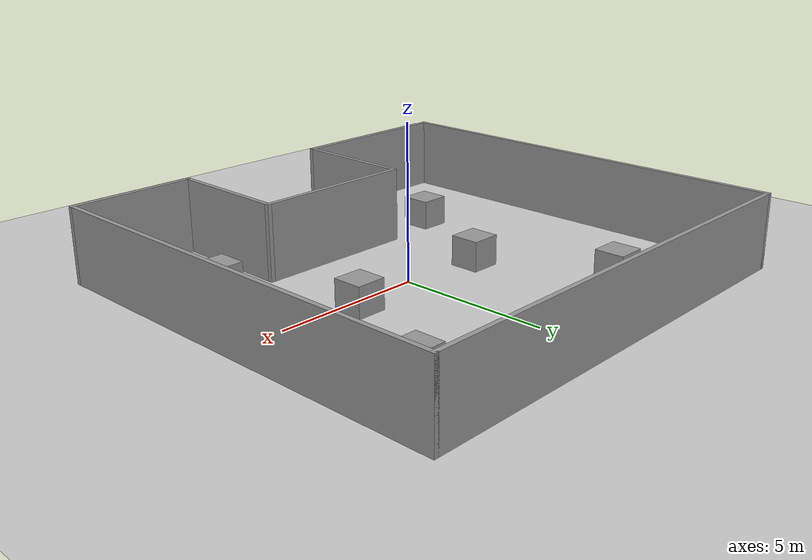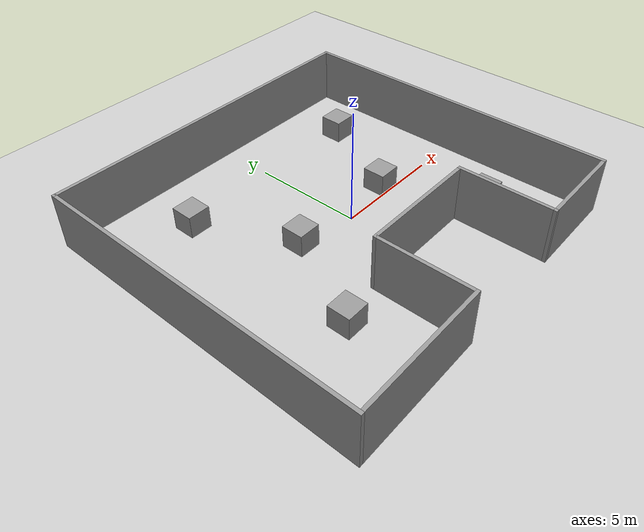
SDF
<sdf version="1.6">
 <world name="default">
  <light name="sun" type="directional">
   <pose>0 0 10 0 -0 0</pose>
   <diffuse>0.8 0.8 0.8 1</diffuse>
   <specular>0.2 0.2 0.2 1</specular>
   <attenuation>
    <range>1000</range>
    <constant>0.9</constant>
    <linear>0.01</linear>
    <quadratic>0.001</quadratic>
   </attenuation>
   <direction>-0.5 0.1 -0.9</direction>
  </light>
  <model name="ground_plane">
   <static>1</static>
   <link name="link">
    <collision name="collision">
     <geometry><plane><normal>0 0 1</normal><size>100 100</size></plane></geometry>
     <surface>
      <contact><collide_bitmask>65535</collide_bitmask></contact>
      <friction><ode><mu>100</mu><mu2>50</mu2></ode></friction>
     </surface>
    </collision>
    <visual name="visual">
     <cast_shadows>0</cast_shadows>
     <geometry><plane><normal>0 0 1</normal><size>100 100</size></plane></geometry>
     <material>
      <script><uri>file://media/materials/scripts/gazebo.material</uri><name>Gazebo/Grey</name></script>
     </material>
    </visual>
   </link>
  </model>
  <gravity>0 0 -9.8</gravity>
  <magnetic_field>6e-06 2.3e-05 -4.2e-05</magnetic_field>
  <atmosphere type="adiabatic"/>
  <physics name="default_physics" default="0" type="ode">
   <max_step_size>0.001</max_step_size>
   <real_time_factor>1</real_time_factor>
   <real_time_update_rate>1000</real_time_update_rate>
  </physics>
  <scene><ambient>0.4 0.4 0.4 1</ambient><background>0.7 0.7 0.7 1</background><shadows>1</shadows></scene>
  <audio><device>default</device></audio>
  <spherical_coordinates>
   <surface_model>EARTH_WGS84</surface_model>
   <latitude_deg>0</latitude_deg>
   <longitude_deg>0</longitude_deg>
   <elevation>0</elevation>
   <heading_deg>0</heading_deg>
  </spherical_coordinates>
  <model name="unit_box">
   <pose>-2.51729 0.493047 0.499995 0 1e-05 0</pose>
   <link name="link">
    <inertial>
     <mass>1</mass>
     <inertia>
      <ixx>0.166667</ixx>
      <ixy>0</ixy>
      <ixz>0</ixz>
      <iyy>0.166667</iyy>
      <iyz>0</iyz>
      <izz>0.166667</izz>
     </inertia>
    </inertial>
    <collision name="collision"><geometry><box><size>1 1 1</size></box></geometry></collision>
    <visual name="visual">
     <geometry><box><size>1 1 1</size></box></geometry>
     <material>
      <script><name>Gazebo/Grey</name><uri>file://media/materials/scripts/gazebo.material</uri></script>
     </material>
    </visual>
   </link>
  </model>
  <model name="unit_box_0">
   <pose>2.52726 0.489744 0.499995 -1e-05 -0 -0</pose>
   <link name="link">
    <inertial>
     <mass>1</mass>
     <inertia>
      <ixx>0.166667</ixx>
      <ixy>0</ixy>
      <ixz>0</ixz>
      <iyy>0.166667</iyy>
      <iyz>0</iyz>
      <izz>0.166667</izz>
     </inertia>
    </inertial>
    <collision name="collision"><geometry><box><size>1 1 1</size></box></geometry></collision>
    <visual name="visual">
     <geometry><box><size>1 1 1</size></box></geometry>
     <material>
      <script><name>Gazebo/Grey</name><uri>file://media/materials/scripts/gazebo.material</uri></script>
     </material>
    </visual>
   </link>
  </model>
  <model name="unit_box_1">
   <pose>4.47897 -3.48964 0.499995 -1e-05 -0 -0</pose>
   <link name="link">
    <inertial>
     <mass>1</mass>
     <inertia>
      <ixx>0.166667</ixx>
      <ixy>0</ixy>
      <ixz>0</ixz>
      <iyy>0.166667</iyy>
      <iyz>0</iyz>
      <izz>0.166667</izz>
     </inertia>
    </inertial>
    <collision name="collision"><geometry><box><size>1 1 1</size></box></geometry></collision>
    <visual name="visual">
     <geometry><box><size>1 1 1</size></box></geometry>
     <material>
      <script><name>Gazebo/Grey</name><uri>file://media/materials/scripts/gazebo.material</uri></script>
     </material>
    </visual>
   </link>
  </model>
  <model name="unit_box_2">
   <pose>-4.54059 -3.53762 0.499995 -1e-05 -0 -0</pose>
   <link name="link">
    <inertial>
     <mass>1</mass>
     <inertia>
      <ixx>0.166667</ixx>
      <ixy>0</ixy>
      <ixz>0</ixz>
      <iyy>0.166667</iyy>
      <iyz>0</iyz>
      <izz>0.166667</izz>
     </inertia>
    </inertial>
    <collision name="collision"><geometry><box><size>1 1 1</size></box></geometry></collision>
    <visual name="visual">
     <geometry><box><size>1 1 1</size></box></geometry>
     <material>
      <script><name>Gazebo/Grey</name><uri>file://media/materials/scripts/gazebo.material</uri></script>
     </material>
    </visual>
   </link>
  </model>
  <model name="unit_box_3">
   <pose>-4.51619 4.56001 0.499995 -1e-05 -0 0</pose>
   <link name="link">
    <inertial>
     <mass>1</mass>
     <inertia>
      <ixx>0.166667</ixx>
      <ixy>0</ixy>
      <ixz>0</ixz>
      <iyy>0.166667</iyy>
      <iyz>0</iyz>
      <izz>0.166667</izz>
     </inertia>
    </inertial>
    <collision name="collision"><geometry><box><size>1 1 1</size></box></geometry></collision>
    <visual name="visual">
     <geometry><box><size>1 1 1</size></box></geometry>
     <material>
      <script><name>Gazebo/Grey</name><uri>file://media/materials/scripts/gazebo.material</uri></script>
     </material>
    </visual>
   </link>
  </model>
  <model name="unit_box_4">
   <pose>4.52188 4.60255 0.5 0 -0 0</pose>
   <link name="link">
    <inertial>
     <mass>1</mass>
     <inertia>
      <ixx>0.166667</ixx>
      <ixy>0</ixy>
      <ixz>0</ixz>
      <iyy>0.166667</iyy>
      <iyz>0</iyz>
      <izz>0.166667</izz>
     </inertia>
    </inertial>
    <collision name="collision"><geometry><box><size>1 1 1</size></box></geometry></collision>
    <visual name="visual">
     <geometry><box><size>1 1 1</size></box></geometry>
     <material>
      <script><name>Gazebo/Grey</name><uri>file://media/materials/scripts/gazebo.material</uri></script>
     </material>
    </visual>
   </link>
  </model>
  <model name="random.world">
   <pose>-0.750062 0.088386 0 0 -0 0</pose>
   <link name="Wall_21">
    <collision name="Wall_21_Collision">
     <geometry><box><size>14.75 0.15 2.5</size></box></geometry>
     <pose>0 0 1.25 0 -0 0</pose>
    </collision>
    <visual name="Wall_21_Visual">
     <pose>0 0 1.25 0 -0 0</pose>
     <geometry><box><size>14.75 0.15 2.5</size></box></geometry>
     <material>
      <script><uri>file://media/materials/scripts/gazebo.material</uri><name>Gazebo/Grey</name></script>
      <ambient>1 1 1 1</ambient>
     </material>
     <meta><layer>0</layer></meta>
    </visual>
    <pose>-7.675 0 0 0 -0 1.5708</pose>
   </link>
   <link name="Wall_22">
    <collision name="Wall_22_Collision">
     <geometry><box><size>15.5 0.15 2.5</size></box></geometry>
     <pose>0 0 1.25 0 -0 0</pose>
    </collision>
    <visual name="Wall_22_Visual">
     <pose>0 0 1.25 0 -0 0</pose>
     <geometry><box><size>15.5 0.15 2.5</size></box></geometry>
     <material>
      <script><uri>file://media/materials/scripts/gazebo.material</uri><name>Gazebo/Grey</name></script>
      <ambient>1 1 1 1</ambient>
     </material>
     <meta><layer>0</layer></meta>
    </visual>
    <pose>-0 7.3 0 0 -0 0</pose>
   </link>
   <link name="Wall_23">
    <collision name="Wall_23_Collision">
     <geometry><box><size>14.75 0.15 2.5</size></box></geometry>
     <pose>0 0 1.25 0 -0 0</pose>
    </collision>
    <visual name="Wall_23_Visual">
     <pose>0 0 1.25 0 -0 0</pose>
     <geometry><box><size>14.75 0.15 2.5</size></box></geometry>
     <material>
      <script><uri>file://media/materials/scripts/gazebo.material</uri><name>Gazebo/Grey</name></script>
      <ambient>1 1 1 1</ambient>
     </material>
     <meta><layer>0</layer></meta>
    </visual>
    <pose>7.675 0 0 0 -0 -1.5708</pose>
   </link>
   <link name="Wall_24">
    <collision name="Wall_24_Collision">
     <geometry><box><size>4.25 0.15 2.5</size></box></geometry>
     <pose>0 0 1.25 0 -0 0</pose>
    </collision>
    <visual name="Wall_24_Visual">
     <pose>0 0 1.25 0 -0 0</pose>
     <geometry><box><size>4.25 0.15 2.5</size></box></geometry>
     <material>
      <script><uri>file://media/materials/scripts/gazebo.material</uri><name>Gazebo/Grey</name></script>
      <ambient>1 1 1 1</ambient>
     </material>
     <meta><layer>0</layer></meta>
    </visual>
    <pose>5.625 -7.3 0 0 -0 3.14159</pose>
   </link>
   <link name="Wall_25">
    <collision name="Wall_25_Collision">
     <geometry><box><size>4.25 0.15 2.5</size></box></geometry>
     <pose>0 0 1.25 0 -0 0</pose>
    </collision>
    <visual name="Wall_25_Visual">
     <pose>0 0 1.25 0 -0 0</pose>
     <geometry><box><size>4.25 0.15 2.5</size></box></geometry>
     <material>
      <script><uri>file://media/materials/scripts/gazebo.material</uri><name>Gazebo/Grey</name></script>
      <ambient>1 1 1 1</ambient>
     </material>
     <meta><layer>0</layer></meta>
    </visual>
    <pose>3.575 -5.25 0 0 -0 1.5708</pose>
   </link>
   <link name="Wall_26">
    <collision name="Wall_26_Collision">
     <geometry><box><size>5.5 0.15 2.5</size></box></geometry>
     <pose>0 0 1.25 0 -0 0</pose>
    </collision>
    <visual name="Wall_26_Visual">
     <pose>0 0 1.25 0 -0 0</pose>
     <geometry><box><size>5.5 0.15 2.5</size></box></geometry>
     <material>
      <script><uri>file://media/materials/scripts/gazebo.material</uri><name>Gazebo/Grey</name></script>
      <ambient>1 1 1 1</ambient>
     </material>
     <meta><layer>0</layer></meta>
    </visual>
    <pose>0.9 -3.2 0 0 -0 3.14159</pose>
   </link>
   <link name="Wall_27">
    <collision name="Wall_27_Collision">
     <geometry><box><size>4.25 0.15 2.5</size></box></geometry>
     <pose>0 0 1.25 0 -0 0</pose>
    </collision>
    <visual name="Wall_27_Visual">
     <pose>0 0 1.25 0 -0 0</pose>
     <geometry><box><size>4.25 0.15 2.5</size></box></geometry>
     <material>
      <script><uri>file://media/materials/scripts/gazebo.material</uri><name>Gazebo/Grey</name></script>
      <ambient>1 1 1 1</ambient>
     </material>
     <meta><layer>0</layer></meta>
    </visual>
    <pose>-1.775 -5.25 0 0 -0 -1.5708</pose>
   </link>
   <link name="Wall_28">
    <collision name="Wall_28_Collision">
     <geometry><box><size>6 0.15 2.5</size></box></geometry>
     <pose>0 0 1.25 0 -0 0</pose>
    </collision>
    <visual name="Wall_28_Visual">
     <pose>0 0 1.25 0 -0 0</pose>
     <geometry><box><size>6 0.15 2.5</size></box></geometry>
     <material>
      <script><uri>file://media/materials/scripts/gazebo.material</uri><name>Gazebo/Grey</name></script>
      <ambient>1 1 1 1</ambient>
     </material>
     <meta><layer>0</layer></meta>
    </visual>
    <pose>-4.7 -7.3 0 0 -0 3.14159</pose>
   </link>
   <static>1</static>
  </model>
 </world>
</sdf>
